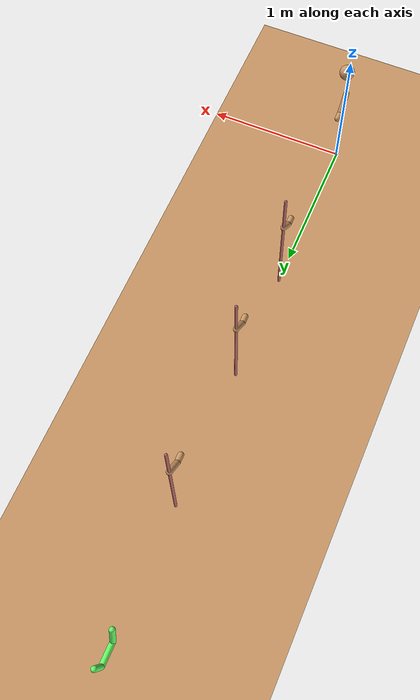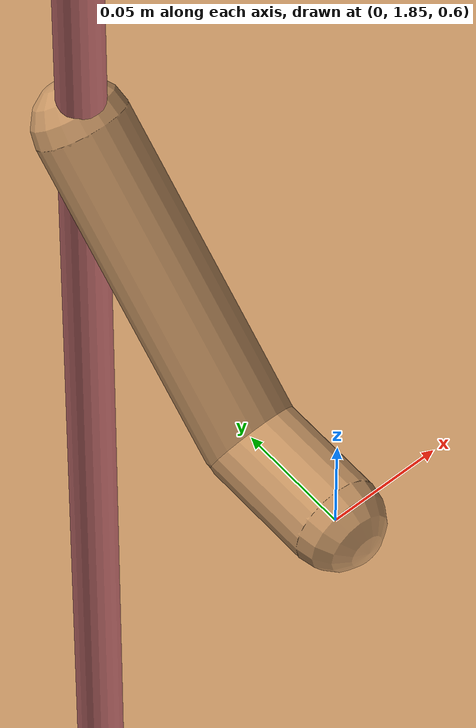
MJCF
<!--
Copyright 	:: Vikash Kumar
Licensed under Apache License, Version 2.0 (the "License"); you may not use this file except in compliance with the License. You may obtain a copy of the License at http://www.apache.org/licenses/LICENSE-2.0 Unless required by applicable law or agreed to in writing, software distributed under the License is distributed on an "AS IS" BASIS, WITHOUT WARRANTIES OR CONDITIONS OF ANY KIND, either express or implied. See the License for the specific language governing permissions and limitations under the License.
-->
<mujoco model='juggler-v1.5'>
    <compiler inertiafromgeom='auto' angle='radian'/>

    <default>
        <joint limited='true' damping='1' armature='0'/>
        <geom contype='1' conaffinity='1' condim='3' rgba='0.8 0.6 .4 1'
        	margin="0.001" solref=".02 1" solimp=".8 .8 .01" material="geom" type='capsule'/>
        <motor ctrlrange='-1 1'  ctrllimited='true'/>
		<default class="passive">
			 <geom contype='0' conaffinity='0' rgba='.73 .4 .4 1' type='capsule'  size='.005 .5' />
		</default>
		<default class="wall">
			 <geom contype='1' conaffinity='1' rgba='1 0 0 1' type='capsule'/>
		</default>
    </default>

    <option timestep='0.002' iterations="50" solver="PGS">
        <flag energy="enable"/>
    </option>

    <visual>
        <map fogstart="3" fogend="5" force="0.1" znear="0.1"/>
        <quality shadowsize="2048"/>
        <global offwidth="800" offheight="800"/>
    </visual>

    <asset>
        <texture name="skybox" type="skybox" builtin="gradient" rgb1=".08 .09 .10" rgb2="0 0 0"
               width="800" height="800" mark="random" markrgb=".8 .8 .8"/>
        <texture name="texgeom" type="cube" builtin="flat" mark="cross" width="127" height="1278"
            rgb1="0.8 0.6 0.4" rgb2="0.8 0.6 0.4" markrgb="1 1 1" random="0.01"/>
        <texture name="texplane" type="2d" builtin="checker" rgb1=".2 .3 .4" rgb2=".1 0.15 0.2"
            width="512" height="512"/>

        <material name='MatPlane' reflectance='0.5' texture="texplane" texrepeat="1 1" texuniform="true"/>
        <material name='geom' texture="texgeom" texuniform="true"/>
    </asset>

    <worldbody>
        <light directional='true' diffuse='.8 .8 .8' specular='0.3 0.3 0.3' pos='0 0 4.0' dir='0 -.15 -1'/>
		<geom name='floor' pos='0 2 0' size='1 3 .125' type='plane' material="MatPlane" condim='3'/>

		<body name='tosser0' pos='0 0 0' euler='0 0 3.14'>
			<geom pos='0 0 .5' class='passive'/>
			<body name='hand0' pos='0 0 0'>
				<geom name='palm0' type='capsule' size='.02' fromto='0 0 .7 0 -.1 .6'/>
				<geom name='finger0' type='capsule' size='.02' fromto='0 -.1 .6 0 -.15 .6'/>
				<joint name='wr0_js' type='slide' pos='0 0 .7' axis='0 0 1' range='-.6 .25' damping='10'/>
				<joint name='wr0_jr' type='hinge' pos='0 0 .7' axis='1 0 0' range='-2.4 0.8'/>
			</body>
		</body>

		<body name='tosser1' pos='0 1.2 0'>
			<geom pos='0 0 .5' size='.01 .5' class='passive'/>
			<body name='hand1' pos='0 0 0'>
				<geom name='palm1' type='capsule' size='.02' fromto='0 0 .7 0 -.1 .6'/>
				<geom name='finger1' type='capsule' size='.02' fromto='0 -.1 .6 0 -.15 .6'/>
				<joint name='wr1_js' type='slide' pos='0 0 .7' axis='0 0 1' range='-.6 .25' damping='10'/>
				<joint name='wr1_jr' type='hinge' pos='0 0 .7' axis='1 0 0' range='-2.4 0.8'/>
			</body>
		</body>

		<body name='tosser2' pos='0 2 0'>
			<geom pos='0 0 .5' size='.01 .5' class='passive'/>
			<body name='hand2' pos='0 0 0'>
				<geom name='palm2' type='capsule' size='.02' fromto='0 0 .7 0 -.1 .6'/>
				<geom name='finger2' type='capsule' size='.02' fromto='0 -.1 .6 0 -.15 .6'/>
				<joint name='wr2_js' type='slide' pos='0 0 .7' axis='0 0 1' range='-.6 .25' damping='10'/>
				<joint name='wr2_jr' type='hinge' pos='0 0 .7' axis='1 0 0' range='-2.4 0.8'/>
			</body>
		</body>

		<body name='tosser3' pos='0 3 0'>
			<geom pos='0 0 .5' size='.01 .5' class='passive'/>
			<body name='hand3' pos='0 0 0'>
				<geom name='palm3' type='capsule' size='.02' fromto='0 0 .7 0 -.1 .6'/>
				<geom name='finger3' type='capsule' size='.02' fromto='0 -.1 .6 0 -.15 .6'/>
				<joint name='wr3_js' type='slide' pos='0 0 .7' axis='0 0 1' range='-.6 .25' damping='10'/>
				<joint name='wr3_jr' type='hinge' pos='0 0 .7' axis='1 0 0' range='-2.4 0.8'/>
			</body>
		</body>

		<body name='ball' pos='0 .08 1'>
		    <geom name='ball' size='.05' type='sphere'/>
			<joint name='ballz' type='slide' axis='0 0 1' limited='false' damping='.01'/>
			<joint name='bally' type='slide' axis='0 1 0' limited='false' damping='.01'/>
			<joint name='ballx' type='hinge' axis='1 0 0' limited='false' damping='.01'/>
		</body>

		<body name='basket2' pos='0 4 0'>
			<geom pos='0 -.1 .12' type='capsule' size='.02 .1' rgba='.4 1 .4 1' condim='1' euler='.2 0 0'/>
			<geom pos='0  .1 .12' type='capsule' size='.02 .1' rgba='.4 1 .4 1' condim='1' euler='-.2 0 0'/>
			<geom pos='0  0 .02' type='capsule' size='.02 .08' rgba='.4 1 .4 1' condim='1' euler='1.57 0 0'/>
			<site name='touch' pos='0 0 .03' type='box' group='4' size='.02 .1 .02'/>
		</body>

	</worldbody>

    <actuator>
		<motor name='h0a0' 	gear='35' joint='wr0_js'/>
		<motor name='h0a1'  gear='35' joint='wr0_jr'/>
		<motor name='h1a0' 	gear='35' joint='wr1_js'/>
		<motor name='h1a1'  gear='35' joint='wr1_jr'/>
		<motor name='h2a0' 	gear='35' joint='wr2_js'/>
		<motor name='h2a1'  gear='35' joint='wr2_jr'/>
		<motor name='h3a0' 	gear='35' joint='wr2_js'/>
		<motor name='h3a1'  gear='35' joint='wr2_jr'/>
    </actuator>

	<sensor>
		<jointpos name="Sjp0_wr_js"	joint="wr0_js"/>
		<jointpos name="Sjp0_wr_jr"	joint="wr0_jr"/>
		<jointpos name="Sjp1_wr_js"	joint="wr1_js"/>
		<jointpos name="Sjp1_wr_jr"	joint="wr1_jr"/>
		<jointpos name="Sjp2_wr_js"	joint="wr2_js"/>
		<jointpos name="Sjp2_wr_jr"	joint="wr2_jr"/>
		<jointpos name="Sjp3_wr_js"	joint="wr3_js"/>
		<jointpos name="Sjp3_wr_jr"	joint="wr3_jr"/>
		<touch name="s_touch"	site="touch"/>
	</sensor>

</mujoco>
